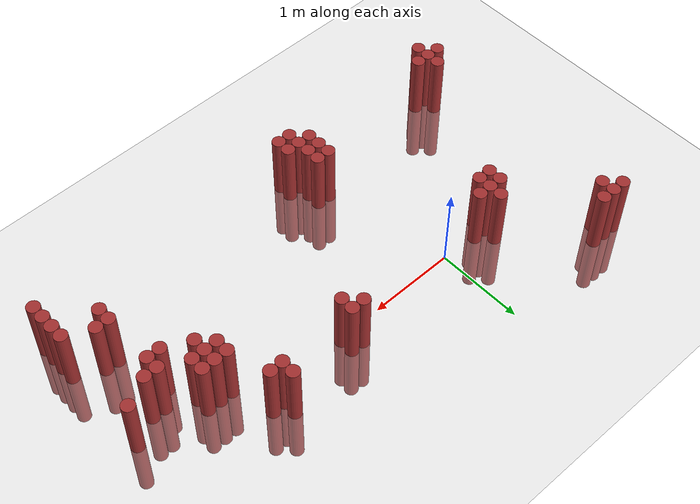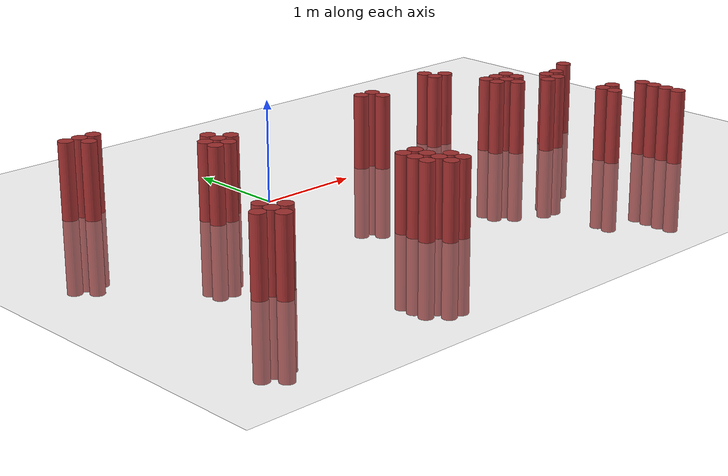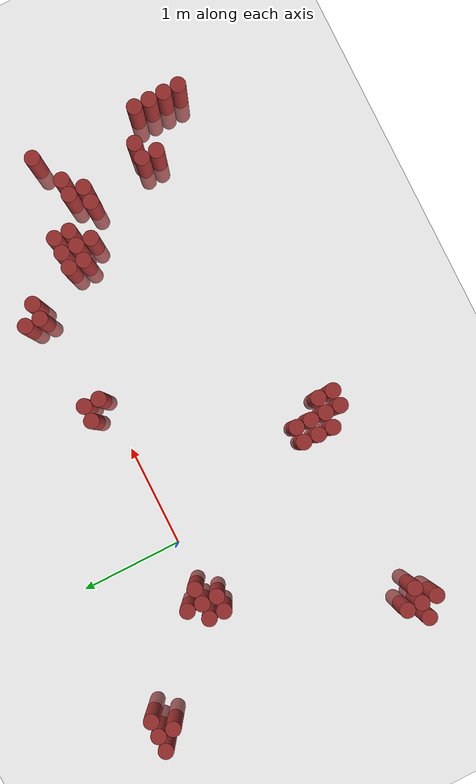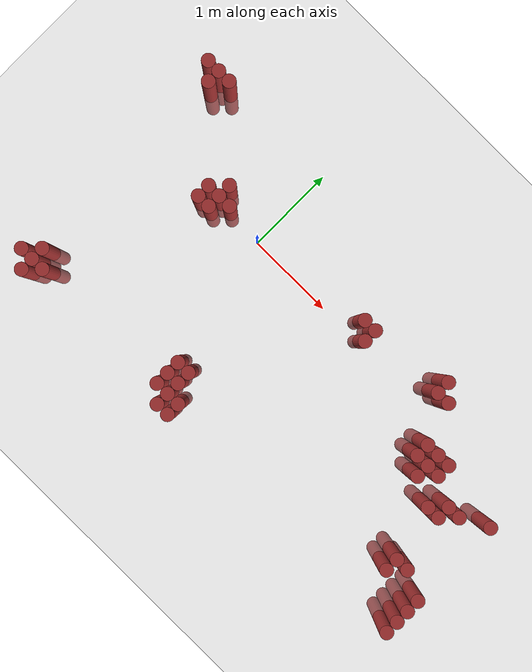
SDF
<sdf version="1.6">
 <world name="default">
  <model name="ground_plane">
   <static>1</static>
   <link name="link">
    <collision name="collision">
     <geometry><plane><normal>0 0 1</normal><size>100 100</size></plane></geometry>
     <surface><friction><ode><mu>100</mu><mu2>50</mu2></ode></friction></surface>
    </collision>
    <visual name="visual">
     <cast_shadows>0</cast_shadows>
     <geometry><plane><normal>0 0 1</normal><size>100 100</size></plane></geometry>
     <material>
      <script><uri>file://media/materials/scripts/gazebo.material</uri><name>Gazebo/Grey</name></script>
     </material>
    </visual>
   </link>
  </model>
  <model name="unit_cylinder_330">
   <static>1</static>
   <pose>-1.625000 -1.775000 0.000000 0.000000 0.000000 0.000000</pose>
   <link name="link">
    <inertial>
     <mass>1</mass>
     <inertia><ixx>0.145833</ixx><ixy>0</ixy><ixz>0</ixz><iyy>0.145833</iyy><iyz>0</iyz><izz>0.125</izz></inertia>
    </inertial>
    <collision name="collision">
     <geometry><cylinder><radius>0.075000</radius><length>1.5</length></cylinder></geometry>
    </collision>
    <visual name="visual">
     <geometry><cylinder><radius>0.075000</radius><length>1.5</length></cylinder></geometry>
     <material>
      <ambient>0.648000 0.192000 0.192000 1</ambient>
      <diffuse>0.648000 0.192000 0.192000 1</diffuse>
     </material>
     <material>
      <script><name>Gazebo/Grey</name><uri>file://media/materials/scripts/gazebo.material</uri></script>
     </material>
    </visual>
   </link>
  </model>
  <model name="unit_cylinder_331">
   <static>1</static>
   <pose>-1.625000 0.925000 0.000000 0.000000 0.000000 0.000000</pose>
   <link name="link">
    <inertial>
     <mass>1</mass>
     <inertia><ixx>0.145833</ixx><ixy>0</ixy><ixz>0</ixz><iyy>0.145833</iyy><iyz>0</iyz><izz>0.125</izz></inertia>
    </inertial>
    <collision name="collision">
     <geometry><cylinder><radius>0.075000</radius><length>1.5</length></cylinder></geometry>
    </collision>
    <visual name="visual">
     <geometry><cylinder><radius>0.075000</radius><length>1.5</length></cylinder></geometry>
     <material>
      <ambient>0.648000 0.192000 0.192000 1</ambient>
      <diffuse>0.648000 0.192000 0.192000 1</diffuse>
     </material>
     <material>
      <script><name>Gazebo/Grey</name><uri>file://media/materials/scripts/gazebo.material</uri></script>
     </material>
    </visual>
   </link>
  </model>
  <model name="unit_cylinder_336">
   <static>1</static>
   <pose>-1.475000 -1.925000 0.000000 0.000000 0.000000 0.000000</pose>
   <link name="link">
    <inertial>
     <mass>1</mass>
     <inertia><ixx>0.145833</ixx><ixy>0</ixy><ixz>0</ixz><iyy>0.145833</iyy><iyz>0</iyz><izz>0.125</izz></inertia>
    </inertial>
    <collision name="collision">
     <geometry><cylinder><radius>0.075000</radius><length>1.5</length></cylinder></geometry>
    </collision>
    <visual name="visual">
     <geometry><cylinder><radius>0.075000</radius><length>1.5</length></cylinder></geometry>
     <material>
      <ambient>0.648000 0.192000 0.192000 1</ambient>
      <diffuse>0.648000 0.192000 0.192000 1</diffuse>
     </material>
     <material>
      <script><name>Gazebo/Grey</name><uri>file://media/materials/scripts/gazebo.material</uri></script>
     </material>
    </visual>
   </link>
  </model>
  <model name="unit_cylinder_337">
   <static>1</static>
   <pose>-1.475000 -1.775000 0.000000 0.000000 0.000000 0.000000</pose>
   <link name="link">
    <inertial>
     <mass>1</mass>
     <inertia><ixx>0.145833</ixx><ixy>0</ixy><ixz>0</ixz><iyy>0.145833</iyy><iyz>0</iyz><izz>0.125</izz></inertia>
    </inertial>
    <collision name="collision">
     <geometry><cylinder><radius>0.075000</radius><length>1.5</length></cylinder></geometry>
    </collision>
    <visual name="visual">
     <geometry><cylinder><radius>0.075000</radius><length>1.5</length></cylinder></geometry>
     <material>
      <ambient>0.648000 0.192000 0.192000 1</ambient>
      <diffuse>0.648000 0.192000 0.192000 1</diffuse>
     </material>
     <material>
      <script><name>Gazebo/Grey</name><uri>file://media/materials/scripts/gazebo.material</uri></script>
     </material>
    </visual>
   </link>
  </model>
  <model name="unit_cylinder_338">
   <static>1</static>
   <pose>-1.475000 -1.625000 0.000000 0.000000 0.000000 0.000000</pose>
   <link name="link">
    <inertial>
     <mass>1</mass>
     <inertia><ixx>0.145833</ixx><ixy>0</ixy><ixz>0</ixz><iyy>0.145833</iyy><iyz>0</iyz><izz>0.125</izz></inertia>
    </inertial>
    <collision name="collision">
     <geometry><cylinder><radius>0.075000</radius><length>1.5</length></cylinder></geometry>
    </collision>
    <visual name="visual">
     <geometry><cylinder><radius>0.075000</radius><length>1.5</length></cylinder></geometry>
     <material>
      <ambient>0.648000 0.192000 0.192000 1</ambient>
      <diffuse>0.648000 0.192000 0.192000 1</diffuse>
     </material>
     <material>
      <script><name>Gazebo/Grey</name><uri>file://media/materials/scripts/gazebo.material</uri></script>
     </material>
    </visual>
   </link>
  </model>
  <model name="unit_cylinder_339">
   <static>1</static>
   <pose>-1.475000 0.775000 0.000000 0.000000 0.000000 0.000000</pose>
   <link name="link">
    <inertial>
     <mass>1</mass>
     <inertia><ixx>0.145833</ixx><ixy>0</ixy><ixz>0</ixz><iyy>0.145833</iyy><iyz>0</iyz><izz>0.125</izz></inertia>
    </inertial>
    <collision name="collision">
     <geometry><cylinder><radius>0.075000</radius><length>1.5</length></cylinder></geometry>
    </collision>
    <visual name="visual">
     <geometry><cylinder><radius>0.075000</radius><length>1.5</length></cylinder></geometry>
     <material>
      <ambient>0.648000 0.192000 0.192000 1</ambient>
      <diffuse>0.648000 0.192000 0.192000 1</diffuse>
     </material>
     <material>
      <script><name>Gazebo/Grey</name><uri>file://media/materials/scripts/gazebo.material</uri></script>
     </material>
    </visual>
   </link>
  </model>
  <model name="unit_cylinder_340">
   <static>1</static>
   <pose>-1.475000 0.925000 0.000000 0.000000 0.000000 0.000000</pose>
   <link name="link">
    <inertial>
     <mass>1</mass>
     <inertia><ixx>0.145833</ixx><ixy>0</ixy><ixz>0</ixz><iyy>0.145833</iyy><iyz>0</iyz><izz>0.125</izz></inertia>
    </inertial>
    <collision name="collision">
     <geometry><cylinder><radius>0.075000</radius><length>1.5</length></cylinder></geometry>
    </collision>
    <visual name="visual">
     <geometry><cylinder><radius>0.075000</radius><length>1.5</length></cylinder></geometry>
     <material>
      <ambient>0.648000 0.192000 0.192000 1</ambient>
      <diffuse>0.648000 0.192000 0.192000 1</diffuse>
     </material>
     <material>
      <script><name>Gazebo/Grey</name><uri>file://media/materials/scripts/gazebo.material</uri></script>
     </material>
    </visual>
   </link>
  </model>
  <model name="unit_cylinder_346">
   <static>1</static>
   <pose>-1.325000 -1.775000 0.000000 0.000000 0.000000 0.000000</pose>
   <link name="link">
    <inertial>
     <mass>1</mass>
     <inertia><ixx>0.145833</ixx><ixy>0</ixy><ixz>0</ixz><iyy>0.145833</iyy><iyz>0</iyz><izz>0.125</izz></inertia>
    </inertial>
    <collision name="collision">
     <geometry><cylinder><radius>0.075000</radius><length>1.5</length></cylinder></geometry>
    </collision>
    <visual name="visual">
     <geometry><cylinder><radius>0.075000</radius><length>1.5</length></cylinder></geometry>
     <material>
      <ambient>0.648000 0.192000 0.192000 1</ambient>
      <diffuse>0.648000 0.192000 0.192000 1</diffuse>
     </material>
     <material>
      <script><name>Gazebo/Grey</name><uri>file://media/materials/scripts/gazebo.material</uri></script>
     </material>
    </visual>
   </link>
  </model>
  <model name="unit_cylinder_347">
   <static>1</static>
   <pose>-1.325000 0.925000 0.000000 0.000000 0.000000 0.000000</pose>
   <link name="link">
    <inertial>
     <mass>1</mass>
     <inertia><ixx>0.145833</ixx><ixy>0</ixy><ixz>0</ixz><iyy>0.145833</iyy><iyz>0</iyz><izz>0.125</izz></inertia>
    </inertial>
    <collision name="collision">
     <geometry><cylinder><radius>0.075000</radius><length>1.5</length></cylinder></geometry>
    </collision>
    <visual name="visual">
     <geometry><cylinder><radius>0.075000</radius><length>1.5</length></cylinder></geometry>
     <material>
      <ambient>0.648000 0.192000 0.192000 1</ambient>
      <diffuse>0.648000 0.192000 0.192000 1</diffuse>
     </material>
     <material>
      <script><name>Gazebo/Grey</name><uri>file://media/materials/scripts/gazebo.material</uri></script>
     </material>
    </visual>
   </link>
  </model>
  <model name="unit_cylinder_371">
   <static>1</static>
   <pose>-0.725000 -0.125000 0.000000 0.000000 0.000000 0.000000</pose>
   <link name="link">
    <inertial>
     <mass>1</mass>
     <inertia><ixx>0.145833</ixx><ixy>0</ixy><ixz>0</ixz><iyy>0.145833</iyy><iyz>0</iyz><izz>0.125</izz></inertia>
    </inertial>
    <collision name="collision">
     <geometry><cylinder><radius>0.075000</radius><length>1.5</length></cylinder></geometry>
    </collision>
    <visual name="visual">
     <geometry><cylinder><radius>0.075000</radius><length>1.5</length></cylinder></geometry>
     <material>
      <ambient>0.648000 0.192000 0.192000 1</ambient>
      <diffuse>0.648000 0.192000 0.192000 1</diffuse>
     </material>
     <material>
      <script><name>Gazebo/Grey</name><uri>file://media/materials/scripts/gazebo.material</uri></script>
     </material>
    </visual>
   </link>
  </model>
  <model name="unit_cylinder_372">
   <static>1</static>
   <pose>-0.725000 0.025000 0.000000 0.000000 0.000000 0.000000</pose>
   <link name="link">
    <inertial>
     <mass>1</mass>
     <inertia><ixx>0.145833</ixx><ixy>0</ixy><ixz>0</ixz><iyy>0.145833</iyy><iyz>0</iyz><izz>0.125</izz></inertia>
    </inertial>
    <collision name="collision">
     <geometry><cylinder><radius>0.075000</radius><length>1.5</length></cylinder></geometry>
    </collision>
    <visual name="visual">
     <geometry><cylinder><radius>0.075000</radius><length>1.5</length></cylinder></geometry>
     <material>
      <ambient>0.648000 0.192000 0.192000 1</ambient>
      <diffuse>0.648000 0.192000 0.192000 1</diffuse>
     </material>
     <material>
      <script><name>Gazebo/Grey</name><uri>file://media/materials/scripts/gazebo.material</uri></script>
     </material>
    </visual>
   </link>
  </model>
  <model name="unit_cylinder_374">
   <static>1</static>
   <pose>-0.575000 -0.125000 0.000000 0.000000 0.000000 0.000000</pose>
   <link name="link">
    <inertial>
     <mass>1</mass>
     <inertia><ixx>0.145833</ixx><ixy>0</ixy><ixz>0</ixz><iyy>0.145833</iyy><iyz>0</iyz><izz>0.125</izz></inertia>
    </inertial>
    <collision name="collision">
     <geometry><cylinder><radius>0.075000</radius><length>1.5</length></cylinder></geometry>
    </collision>
    <visual name="visual">
     <geometry><cylinder><radius>0.075000</radius><length>1.5</length></cylinder></geometry>
     <material>
      <ambient>0.648000 0.192000 0.192000 1</ambient>
      <diffuse>0.648000 0.192000 0.192000 1</diffuse>
     </material>
     <material>
      <script><name>Gazebo/Grey</name><uri>file://media/materials/scripts/gazebo.material</uri></script>
     </material>
    </visual>
   </link>
  </model>
  <model name="unit_cylinder_375">
   <static>1</static>
   <pose>-0.575000 0.025000 0.000000 0.000000 0.000000 0.000000</pose>
   <link name="link">
    <inertial>
     <mass>1</mass>
     <inertia><ixx>0.145833</ixx><ixy>0</ixy><ixz>0</ixz><iyy>0.145833</iyy><iyz>0</iyz><izz>0.125</izz></inertia>
    </inertial>
    <collision name="collision">
     <geometry><cylinder><radius>0.075000</radius><length>1.5</length></cylinder></geometry>
    </collision>
    <visual name="visual">
     <geometry><cylinder><radius>0.075000</radius><length>1.5</length></cylinder></geometry>
     <material>
      <ambient>0.648000 0.192000 0.192000 1</ambient>
      <diffuse>0.648000 0.192000 0.192000 1</diffuse>
     </material>
     <material>
      <script><name>Gazebo/Grey</name><uri>file://media/materials/scripts/gazebo.material</uri></script>
     </material>
    </visual>
   </link>
  </model>
  <model name="unit_cylinder_376">
   <static>1</static>
   <pose>-0.575000 0.175000 0.000000 0.000000 0.000000 0.000000</pose>
   <link name="link">
    <inertial>
     <mass>1</mass>
     <inertia><ixx>0.145833</ixx><ixy>0</ixy><ixz>0</ixz><iyy>0.145833</iyy><iyz>0</iyz><izz>0.125</izz></inertia>
    </inertial>
    <collision name="collision">
     <geometry><cylinder><radius>0.075000</radius><length>1.5</length></cylinder></geometry>
    </collision>
    <visual name="visual">
     <geometry><cylinder><radius>0.075000</radius><length>1.5</length></cylinder></geometry>
     <material>
      <ambient>0.648000 0.192000 0.192000 1</ambient>
      <diffuse>0.648000 0.192000 0.192000 1</diffuse>
     </material>
     <material>
      <script><name>Gazebo/Grey</name><uri>file://media/materials/scripts/gazebo.material</uri></script>
     </material>
    </visual>
   </link>
  </model>
  <model name="unit_cylinder_377">
   <static>1</static>
   <pose>-0.425000 0.025000 0.000000 0.000000 0.000000 0.000000</pose>
   <link name="link">
    <inertial>
     <mass>1</mass>
     <inertia><ixx>0.145833</ixx><ixy>0</ixy><ixz>0</ixz><iyy>0.145833</iyy><iyz>0</iyz><izz>0.125</izz></inertia>
    </inertial>
    <collision name="collision">
     <geometry><cylinder><radius>0.075000</radius><length>1.5</length></cylinder></geometry>
    </collision>
    <visual name="visual">
     <geometry><cylinder><radius>0.075000</radius><length>1.5</length></cylinder></geometry>
     <material>
      <ambient>0.648000 0.192000 0.192000 1</ambient>
      <diffuse>0.648000 0.192000 0.192000 1</diffuse>
     </material>
     <material>
      <script><name>Gazebo/Grey</name><uri>file://media/materials/scripts/gazebo.material</uri></script>
     </material>
    </visual>
   </link>
  </model>
  <model name="unit_cylinder_389">
   <static>1</static>
   <pose>0.325000 -1.775000 0.000000 0.000000 0.000000 0.000000</pose>
   <link name="link">
    <inertial>
     <mass>1</mass>
     <inertia><ixx>0.145833</ixx><ixy>0</ixy><ixz>0</ixz><iyy>0.145833</iyy><iyz>0</iyz><izz>0.125</izz></inertia>
    </inertial>
    <collision name="collision">
     <geometry><cylinder><radius>0.075000</radius><length>1.5</length></cylinder></geometry>
    </collision>
    <visual name="visual">
     <geometry><cylinder><radius>0.075000</radius><length>1.5</length></cylinder></geometry>
     <material>
      <ambient>0.648000 0.192000 0.192000 1</ambient>
      <diffuse>0.648000 0.192000 0.192000 1</diffuse>
     </material>
     <material>
      <script><name>Gazebo/Grey</name><uri>file://media/materials/scripts/gazebo.material</uri></script>
     </material>
    </visual>
   </link>
  </model>
  <model name="unit_cylinder_390">
   <static>1</static>
   <pose>0.325000 -1.625000 0.000000 0.000000 0.000000 0.000000</pose>
   <link name="link">
    <inertial>
     <mass>1</mass>
     <inertia><ixx>0.145833</ixx><ixy>0</ixy><ixz>0</ixz><iyy>0.145833</iyy><iyz>0</iyz><izz>0.125</izz></inertia>
    </inertial>
    <collision name="collision">
     <geometry><cylinder><radius>0.075000</radius><length>1.5</length></cylinder></geometry>
    </collision>
    <visual name="visual">
     <geometry><cylinder><radius>0.075000</radius><length>1.5</length></cylinder></geometry>
     <material>
      <ambient>0.648000 0.192000 0.192000 1</ambient>
      <diffuse>0.648000 0.192000 0.192000 1</diffuse>
     </material>
     <material>
      <script><name>Gazebo/Grey</name><uri>file://media/materials/scripts/gazebo.material</uri></script>
     </material>
    </visual>
   </link>
  </model>
  <model name="unit_cylinder_391">
   <static>1</static>
   <pose>0.325000 -1.475000 0.000000 0.000000 0.000000 0.000000</pose>
   <link name="link">
    <inertial>
     <mass>1</mass>
     <inertia><ixx>0.145833</ixx><ixy>0</ixy><ixz>0</ixz><iyy>0.145833</iyy><iyz>0</iyz><izz>0.125</izz></inertia>
    </inertial>
    <collision name="collision">
     <geometry><cylinder><radius>0.075000</radius><length>1.5</length></cylinder></geometry>
    </collision>
    <visual name="visual">
     <geometry><cylinder><radius>0.075000</radius><length>1.5</length></cylinder></geometry>
     <material>
      <ambient>0.648000 0.192000 0.192000 1</ambient>
      <diffuse>0.648000 0.192000 0.192000 1</diffuse>
     </material>
     <material>
      <script><name>Gazebo/Grey</name><uri>file://media/materials/scripts/gazebo.material</uri></script>
     </material>
    </visual>
   </link>
  </model>
  <model name="unit_cylinder_392">
   <static>1</static>
   <pose>0.475000 -1.925000 0.000000 0.000000 0.000000 0.000000</pose>
   <link name="link">
    <inertial>
     <mass>1</mass>
     <inertia><ixx>0.145833</ixx><ixy>0</ixy><ixz>0</ixz><iyy>0.145833</iyy><iyz>0</iyz><izz>0.125</izz></inertia>
    </inertial>
    <collision name="collision">
     <geometry><cylinder><radius>0.075000</radius><length>1.5</length></cylinder></geometry>
    </collision>
    <visual name="visual">
     <geometry><cylinder><radius>0.075000</radius><length>1.5</length></cylinder></geometry>
     <material>
      <ambient>0.648000 0.192000 0.192000 1</ambient>
      <diffuse>0.648000 0.192000 0.192000 1</diffuse>
     </material>
     <material>
      <script><name>Gazebo/Grey</name><uri>file://media/materials/scripts/gazebo.material</uri></script>
     </material>
    </visual>
   </link>
  </model>
  <model name="unit_cylinder_393">
   <static>1</static>
   <pose>0.475000 -1.775000 0.000000 0.000000 0.000000 0.000000</pose>
   <link name="link">
    <inertial>
     <mass>1</mass>
     <inertia><ixx>0.145833</ixx><ixy>0</ixy><ixz>0</ixz><iyy>0.145833</iyy><iyz>0</iyz><izz>0.125</izz></inertia>
    </inertial>
    <collision name="collision">
     <geometry><cylinder><radius>0.075000</radius><length>1.5</length></cylinder></geometry>
    </collision>
    <visual name="visual">
     <geometry><cylinder><radius>0.075000</radius><length>1.5</length></cylinder></geometry>
     <material>
      <ambient>0.648000 0.192000 0.192000 1</ambient>
      <diffuse>0.648000 0.192000 0.192000 1</diffuse>
     </material>
     <material>
      <script><name>Gazebo/Grey</name><uri>file://media/materials/scripts/gazebo.material</uri></script>
     </material>
    </visual>
   </link>
  </model>
  <model name="unit_cylinder_394">
   <static>1</static>
   <pose>0.475000 -1.625000 0.000000 0.000000 0.000000 0.000000</pose>
   <link name="link">
    <inertial>
     <mass>1</mass>
     <inertia><ixx>0.145833</ixx><ixy>0</ixy><ixz>0</ixz><iyy>0.145833</iyy><iyz>0</iyz><izz>0.125</izz></inertia>
    </inertial>
    <collision name="collision">
     <geometry><cylinder><radius>0.075000</radius><length>1.5</length></cylinder></geometry>
    </collision>
    <visual name="visual">
     <geometry><cylinder><radius>0.075000</radius><length>1.5</length></cylinder></geometry>
     <material>
      <ambient>0.648000 0.192000 0.192000 1</ambient>
      <diffuse>0.648000 0.192000 0.192000 1</diffuse>
     </material>
     <material>
      <script><name>Gazebo/Grey</name><uri>file://media/materials/scripts/gazebo.material</uri></script>
     </material>
    </visual>
   </link>
  </model>
  <model name="unit_cylinder_395">
   <static>1</static>
   <pose>0.475000 -1.475000 0.000000 0.000000 0.000000 0.000000</pose>
   <link name="link">
    <inertial>
     <mass>1</mass>
     <inertia><ixx>0.145833</ixx><ixy>0</ixy><ixz>0</ixz><iyy>0.145833</iyy><iyz>0</iyz><izz>0.125</izz></inertia>
    </inertial>
    <collision name="collision">
     <geometry><cylinder><radius>0.075000</radius><length>1.5</length></cylinder></geometry>
    </collision>
    <visual name="visual">
     <geometry><cylinder><radius>0.075000</radius><length>1.5</length></cylinder></geometry>
     <material>
      <ambient>0.648000 0.192000 0.192000 1</ambient>
      <diffuse>0.648000 0.192000 0.192000 1</diffuse>
     </material>
     <material>
      <script><name>Gazebo/Grey</name><uri>file://media/materials/scripts/gazebo.material</uri></script>
     </material>
    </visual>
   </link>
  </model>
  <model name="unit_cylinder_396">
   <static>1</static>
   <pose>0.625000 -1.925000 0.000000 0.000000 0.000000 0.000000</pose>
   <link name="link">
    <inertial>
     <mass>1</mass>
     <inertia><ixx>0.145833</ixx><ixy>0</ixy><ixz>0</ixz><iyy>0.145833</iyy><iyz>0</iyz><izz>0.125</izz></inertia>
    </inertial>
    <collision name="collision">
     <geometry><cylinder><radius>0.075000</radius><length>1.5</length></cylinder></geometry>
    </collision>
    <visual name="visual">
     <geometry><cylinder><radius>0.075000</radius><length>1.5</length></cylinder></geometry>
     <material>
      <ambient>0.648000 0.192000 0.192000 1</ambient>
      <diffuse>0.648000 0.192000 0.192000 1</diffuse>
     </material>
     <material>
      <script><name>Gazebo/Grey</name><uri>file://media/materials/scripts/gazebo.material</uri></script>
     </material>
    </visual>
   </link>
  </model>
  <model name="unit_cylinder_397">
   <static>1</static>
   <pose>0.625000 -1.775000 0.000000 0.000000 0.000000 0.000000</pose>
   <link name="link">
    <inertial>
     <mass>1</mass>
     <inertia><ixx>0.145833</ixx><ixy>0</ixy><ixz>0</ixz><iyy>0.145833</iyy><iyz>0</iyz><izz>0.125</izz></inertia>
    </inertial>
    <collision name="collision">
     <geometry><cylinder><radius>0.075000</radius><length>1.5</length></cylinder></geometry>
    </collision>
    <visual name="visual">
     <geometry><cylinder><radius>0.075000</radius><length>1.5</length></cylinder></geometry>
     <material>
      <ambient>0.648000 0.192000 0.192000 1</ambient>
      <diffuse>0.648000 0.192000 0.192000 1</diffuse>
     </material>
     <material>
      <script><name>Gazebo/Grey</name><uri>file://media/materials/scripts/gazebo.material</uri></script>
     </material>
    </visual>
   </link>
  </model>
  <model name="unit_cylinder_400">
   <static>1</static>
   <pose>1.375000 0.175000 0.000000 0.000000 0.000000 0.000000</pose>
   <link name="link">
    <inertial>
     <mass>1</mass>
     <inertia><ixx>0.145833</ixx><ixy>0</ixy><ixz>0</ixz><iyy>0.145833</iyy><iyz>0</iyz><izz>0.125</izz></inertia>
    </inertial>
    <collision name="collision">
     <geometry><cylinder><radius>0.075000</radius><length>1.5</length></cylinder></geometry>
    </collision>
    <visual name="visual">
     <geometry><cylinder><radius>0.075000</radius><length>1.5</length></cylinder></geometry>
     <material>
      <ambient>0.648000 0.192000 0.192000 1</ambient>
      <diffuse>0.648000 0.192000 0.192000 1</diffuse>
     </material>
     <material>
      <script><name>Gazebo/Grey</name><uri>file://media/materials/scripts/gazebo.material</uri></script>
     </material>
    </visual>
   </link>
  </model>
  <model name="unit_cylinder_405">
   <static>1</static>
   <pose>1.525000 0.025000 0.000000 0.000000 0.000000 0.000000</pose>
   <link name="link">
    <inertial>
     <mass>1</mass>
     <inertia><ixx>0.145833</ixx><ixy>0</ixy><ixz>0</ixz><iyy>0.145833</iyy><iyz>0</iyz><izz>0.125</izz></inertia>
    </inertial>
    <collision name="collision">
     <geometry><cylinder><radius>0.075000</radius><length>1.5</length></cylinder></geometry>
    </collision>
    <visual name="visual">
     <geometry><cylinder><radius>0.075000</radius><length>1.5</length></cylinder></geometry>
     <material>
      <ambient>0.648000 0.192000 0.192000 1</ambient>
      <diffuse>0.648000 0.192000 0.192000 1</diffuse>
     </material>
     <material>
      <script><name>Gazebo/Grey</name><uri>file://media/materials/scripts/gazebo.material</uri></script>
     </material>
    </visual>
   </link>
  </model>
  <model name="unit_cylinder_406">
   <static>1</static>
   <pose>1.525000 0.175000 0.000000 0.000000 0.000000 0.000000</pose>
   <link name="link">
    <inertial>
     <mass>1</mass>
     <inertia><ixx>0.145833</ixx><ixy>0</ixy><ixz>0</ixz><iyy>0.145833</iyy><iyz>0</iyz><izz>0.125</izz></inertia>
    </inertial>
    <collision name="collision">
     <geometry><cylinder><radius>0.075000</radius><length>1.5</length></cylinder></geometry>
    </collision>
    <visual name="visual">
     <geometry><cylinder><radius>0.075000</radius><length>1.5</length></cylinder></geometry>
     <material>
      <ambient>0.648000 0.192000 0.192000 1</ambient>
      <diffuse>0.648000 0.192000 0.192000 1</diffuse>
     </material>
     <material>
      <script><name>Gazebo/Grey</name><uri>file://media/materials/scripts/gazebo.material</uri></script>
     </material>
    </visual>
   </link>
  </model>
  <model name="unit_cylinder_424">
   <static>1</static>
   <pose>2.425000 0.175000 0.000000 0.000000 0.000000 0.000000</pose>
   <link name="link">
    <inertial>
     <mass>1</mass>
     <inertia><ixx>0.145833</ixx><ixy>0</ixy><ixz>0</ixz><iyy>0.145833</iyy><iyz>0</iyz><izz>0.125</izz></inertia>
    </inertial>
    <collision name="collision">
     <geometry><cylinder><radius>0.075000</radius><length>1.5</length></cylinder></geometry>
    </collision>
    <visual name="visual">
     <geometry><cylinder><radius>0.075000</radius><length>1.5</length></cylinder></geometry>
     <material>
      <ambient>0.648000 0.192000 0.192000 1</ambient>
      <diffuse>0.648000 0.192000 0.192000 1</diffuse>
     </material>
     <material>
      <script><name>Gazebo/Grey</name><uri>file://media/materials/scripts/gazebo.material</uri></script>
     </material>
    </visual>
   </link>
  </model>
  <model name="unit_cylinder_425">
   <static>1</static>
   <pose>2.425000 0.325000 0.000000 0.000000 0.000000 0.000000</pose>
   <link name="link">
    <inertial>
     <mass>1</mass>
     <inertia><ixx>0.145833</ixx><ixy>0</ixy><ixz>0</ixz><iyy>0.145833</iyy><iyz>0</iyz><izz>0.125</izz></inertia>
    </inertial>
    <collision name="collision">
     <geometry><cylinder><radius>0.075000</radius><length>1.5</length></cylinder></geometry>
    </collision>
    <visual name="visual">
     <geometry><cylinder><radius>0.075000</radius><length>1.5</length></cylinder></geometry>
     <material>
      <ambient>0.648000 0.192000 0.192000 1</ambient>
      <diffuse>0.648000 0.192000 0.192000 1</diffuse>
     </material>
     <material>
      <script><name>Gazebo/Grey</name><uri>file://media/materials/scripts/gazebo.material</uri></script>
     </material>
    </visual>
   </link>
  </model>
  <model name="unit_cylinder_428">
   <static>1</static>
   <pose>2.575000 0.175000 0.000000 0.000000 0.000000 0.000000</pose>
   <link name="link">
    <inertial>
     <mass>1</mass>
     <inertia><ixx>0.145833</ixx><ixy>0</ixy><ixz>0</ixz><iyy>0.145833</iyy><iyz>0</iyz><izz>0.125</izz></inertia>
    </inertial>
    <collision name="collision">
     <geometry><cylinder><radius>0.075000</radius><length>1.5</length></cylinder></geometry>
    </collision>
    <visual name="visual">
     <geometry><cylinder><radius>0.075000</radius><length>1.5</length></cylinder></geometry>
     <material>
      <ambient>0.648000 0.192000 0.192000 1</ambient>
      <diffuse>0.648000 0.192000 0.192000 1</diffuse>
     </material>
     <material>
      <script><name>Gazebo/Grey</name><uri>file://media/materials/scripts/gazebo.material</uri></script>
     </material>
    </visual>
   </link>
  </model>
  <model name="unit_cylinder_430">
   <static>1</static>
   <pose>2.725000 -0.425000 0.000000 0.000000 0.000000 0.000000</pose>
   <link name="link">
    <inertial>
     <mass>1</mass>
     <inertia><ixx>0.145833</ixx><ixy>0</ixy><ixz>0</ixz><iyy>0.145833</iyy><iyz>0</iyz><izz>0.125</izz></inertia>
    </inertial>
    <collision name="collision">
     <geometry><cylinder><radius>0.075000</radius><length>1.5</length></cylinder></geometry>
    </collision>
    <visual name="visual">
     <geometry><cylinder><radius>0.075000</radius><length>1.5</length></cylinder></geometry>
     <material>
      <ambient>0.648000 0.192000 0.192000 1</ambient>
      <diffuse>0.648000 0.192000 0.192000 1</diffuse>
     </material>
     <material>
      <script><name>Gazebo/Grey</name><uri>file://media/materials/scripts/gazebo.material</uri></script>
     </material>
    </visual>
   </link>
  </model>
  <model name="unit_cylinder_431">
   <static>1</static>
   <pose>2.725000 -0.275000 0.000000 0.000000 0.000000 0.000000</pose>
   <link name="link">
    <inertial>
     <mass>1</mass>
     <inertia><ixx>0.145833</ixx><ixy>0</ixy><ixz>0</ixz><iyy>0.145833</iyy><iyz>0</iyz><izz>0.125</izz></inertia>
    </inertial>
    <collision name="collision">
     <geometry><cylinder><radius>0.075000</radius><length>1.5</length></cylinder></geometry>
    </collision>
    <visual name="visual">
     <geometry><cylinder><radius>0.075000</radius><length>1.5</length></cylinder></geometry>
     <material>
      <ambient>0.648000 0.192000 0.192000 1</ambient>
      <diffuse>0.648000 0.192000 0.192000 1</diffuse>
     </material>
     <material>
      <script><name>Gazebo/Grey</name><uri>file://media/materials/scripts/gazebo.material</uri></script>
     </material>
    </visual>
   </link>
  </model>
  <model name="unit_cylinder_432">
   <static>1</static>
   <pose>2.875000 -0.575000 0.000000 0.000000 0.000000 0.000000</pose>
   <link name="link">
    <inertial>
     <mass>1</mass>
     <inertia><ixx>0.145833</ixx><ixy>0</ixy><ixz>0</ixz><iyy>0.145833</iyy><iyz>0</iyz><izz>0.125</izz></inertia>
    </inertial>
    <collision name="collision">
     <geometry><cylinder><radius>0.075000</radius><length>1.5</length></cylinder></geometry>
    </collision>
    <visual name="visual">
     <geometry><cylinder><radius>0.075000</radius><length>1.5</length></cylinder></geometry>
     <material>
      <ambient>0.648000 0.192000 0.192000 1</ambient>
      <diffuse>0.648000 0.192000 0.192000 1</diffuse>
     </material>
     <material>
      <script><name>Gazebo/Grey</name><uri>file://media/materials/scripts/gazebo.material</uri></script>
     </material>
    </visual>
   </link>
  </model>
  <model name="unit_cylinder_433">
   <static>1</static>
   <pose>2.875000 -0.425000 0.000000 0.000000 0.000000 0.000000</pose>
   <link name="link">
    <inertial>
     <mass>1</mass>
     <inertia><ixx>0.145833</ixx><ixy>0</ixy><ixz>0</ixz><iyy>0.145833</iyy><iyz>0</iyz><izz>0.125</izz></inertia>
    </inertial>
    <collision name="collision">
     <geometry><cylinder><radius>0.075000</radius><length>1.5</length></cylinder></geometry>
    </collision>
    <visual name="visual">
     <geometry><cylinder><radius>0.075000</radius><length>1.5</length></cylinder></geometry>
     <material>
      <ambient>0.648000 0.192000 0.192000 1</ambient>
      <diffuse>0.648000 0.192000 0.192000 1</diffuse>
     </material>
     <material>
      <script><name>Gazebo/Grey</name><uri>file://media/materials/scripts/gazebo.material</uri></script>
     </material>
    </visual>
   </link>
  </model>
  <model name="unit_cylinder_434">
   <static>1</static>
   <pose>2.875000 -0.275000 0.000000 0.000000 0.000000 0.000000</pose>
   <link name="link">
    <inertial>
     <mass>1</mass>
     <inertia><ixx>0.145833</ixx><ixy>0</ixy><ixz>0</ixz><iyy>0.145833</iyy><iyz>0</iyz><izz>0.125</izz></inertia>
    </inertial>
    <collision name="collision">
     <geometry><cylinder><radius>0.075000</radius><length>1.5</length></cylinder></geometry>
    </collision>
    <visual name="visual">
     <geometry><cylinder><radius>0.075000</radius><length>1.5</length></cylinder></geometry>
     <material>
      <ambient>0.648000 0.192000 0.192000 1</ambient>
      <diffuse>0.648000 0.192000 0.192000 1</diffuse>
     </material>
     <material>
      <script><name>Gazebo/Grey</name><uri>file://media/materials/scripts/gazebo.material</uri></script>
     </material>
    </visual>
   </link>
  </model>
  <model name="unit_cylinder_441">
   <static>1</static>
   <pose>3.025000 -0.425000 0.000000 0.000000 0.000000 0.000000</pose>
   <link name="link">
    <inertial>
     <mass>1</mass>
     <inertia><ixx>0.145833</ixx><ixy>0</ixy><ixz>0</ixz><iyy>0.145833</iyy><iyz>0</iyz><izz>0.125</izz></inertia>
    </inertial>
    <collision name="collision">
     <geometry><cylinder><radius>0.075000</radius><length>1.5</length></cylinder></geometry>
    </collision>
    <visual name="visual">
     <geometry><cylinder><radius>0.075000</radius><length>1.5</length></cylinder></geometry>
     <material>
      <ambient>0.648000 0.192000 0.192000 1</ambient>
      <diffuse>0.648000 0.192000 0.192000 1</diffuse>
     </material>
     <material>
      <script><name>Gazebo/Grey</name><uri>file://media/materials/scripts/gazebo.material</uri></script>
     </material>
    </visual>
   </link>
  </model>
  <model name="unit_cylinder_442">
   <static>1</static>
   <pose>3.025000 -0.275000 0.000000 0.000000 0.000000 0.000000</pose>
   <link name="link">
    <inertial>
     <mass>1</mass>
     <inertia><ixx>0.145833</ixx><ixy>0</ixy><ixz>0</ixz><iyy>0.145833</iyy><iyz>0</iyz><izz>0.125</izz></inertia>
    </inertial>
    <collision name="collision">
     <geometry><cylinder><radius>0.075000</radius><length>1.5</length></cylinder></geometry>
    </collision>
    <visual name="visual">
     <geometry><cylinder><radius>0.075000</radius><length>1.5</length></cylinder></geometry>
     <material>
      <ambient>0.648000 0.192000 0.192000 1</ambient>
      <diffuse>0.648000 0.192000 0.192000 1</diffuse>
     </material>
     <material>
      <script><name>Gazebo/Grey</name><uri>file://media/materials/scripts/gazebo.material</uri></script>
     </material>
    </visual>
   </link>
  </model>
  <model name="unit_cylinder_449">
   <static>1</static>
   <pose>3.175000 -0.725000 0.000000 0.000000 0.000000 0.000000</pose>
   <link name="link">
    <inertial>
     <mass>1</mass>
     <inertia><ixx>0.145833</ixx><ixy>0</ixy><ixz>0</ixz><iyy>0.145833</iyy><iyz>0</iyz><izz>0.125</izz></inertia>
    </inertial>
    <collision name="collision">
     <geometry><cylinder><radius>0.075000</radius><length>1.5</length></cylinder></geometry>
    </collision>
    <visual name="visual">
     <geometry><cylinder><radius>0.075000</radius><length>1.5</length></cylinder></geometry>
     <material>
      <ambient>0.648000 0.192000 0.192000 1</ambient>
      <diffuse>0.648000 0.192000 0.192000 1</diffuse>
     </material>
     <material>
      <script><name>Gazebo/Grey</name><uri>file://media/materials/scripts/gazebo.material</uri></script>
     </material>
    </visual>
   </link>
  </model>
  <model name="unit_cylinder_451">
   <static>1</static>
   <pose>3.325000 -1.475000 0.000000 0.000000 0.000000 0.000000</pose>
   <link name="link">
    <inertial>
     <mass>1</mass>
     <inertia><ixx>0.145833</ixx><ixy>0</ixy><ixz>0</ixz><iyy>0.145833</iyy><iyz>0</iyz><izz>0.125</izz></inertia>
    </inertial>
    <collision name="collision">
     <geometry><cylinder><radius>0.075000</radius><length>1.5</length></cylinder></geometry>
    </collision>
    <visual name="visual">
     <geometry><cylinder><radius>0.075000</radius><length>1.5</length></cylinder></geometry>
     <material>
      <ambient>0.648000 0.192000 0.192000 1</ambient>
      <diffuse>0.648000 0.192000 0.192000 1</diffuse>
     </material>
     <material>
      <script><name>Gazebo/Grey</name><uri>file://media/materials/scripts/gazebo.material</uri></script>
     </material>
    </visual>
   </link>
  </model>
  <model name="unit_cylinder_452">
   <static>1</static>
   <pose>3.325000 -1.325000 0.000000 0.000000 0.000000 0.000000</pose>
   <link name="link">
    <inertial>
     <mass>1</mass>
     <inertia><ixx>0.145833</ixx><ixy>0</ixy><ixz>0</ixz><iyy>0.145833</iyy><iyz>0</iyz><izz>0.125</izz></inertia>
    </inertial>
    <collision name="collision">
     <geometry><cylinder><radius>0.075000</radius><length>1.5</length></cylinder></geometry>
    </collision>
    <visual name="visual">
     <geometry><cylinder><radius>0.075000</radius><length>1.5</length></cylinder></geometry>
     <material>
      <ambient>0.648000 0.192000 0.192000 1</ambient>
      <diffuse>0.648000 0.192000 0.192000 1</diffuse>
     </material>
     <material>
      <script><name>Gazebo/Grey</name><uri>file://media/materials/scripts/gazebo.material</uri></script>
     </material>
    </visual>
   </link>
  </model>
  <model name="unit_cylinder_453">
   <static>1</static>
   <pose>3.325000 -0.725000 0.000000 0.000000 0.000000 0.000000</pose>
   <link name="link">
    <inertial>
     <mass>1</mass>
     <inertia><ixx>0.145833</ixx><ixy>0</ixy><ixz>0</ixz><iyy>0.145833</iyy><iyz>0</iyz><izz>0.125</izz></inertia>
    </inertial>
    <collision name="collision">
     <geometry><cylinder><radius>0.075000</radius><length>1.5</length></cylinder></geometry>
    </collision>
    <visual name="visual">
     <geometry><cylinder><radius>0.075000</radius><length>1.5</length></cylinder></geometry>
     <material>
      <ambient>0.648000 0.192000 0.192000 1</ambient>
      <diffuse>0.648000 0.192000 0.192000 1</diffuse>
     </material>
     <material>
      <script><name>Gazebo/Grey</name><uri>file://media/materials/scripts/gazebo.material</uri></script>
     </material>
    </visual>
   </link>
  </model>
  <model name="unit_cylinder_454">
   <static>1</static>
   <pose>3.325000 -0.575000 0.000000 0.000000 0.000000 0.000000</pose>
   <link name="link">
    <inertial>
     <mass>1</mass>
     <inertia><ixx>0.145833</ixx><ixy>0</ixy><ixz>0</ixz><iyy>0.145833</iyy><iyz>0</iyz><izz>0.125</izz></inertia>
    </inertial>
    <collision name="collision">
     <geometry><cylinder><radius>0.075000</radius><length>1.5</length></cylinder></geometry>
    </collision>
    <visual name="visual">
     <geometry><cylinder><radius>0.075000</radius><length>1.5</length></cylinder></geometry>
     <material>
      <ambient>0.648000 0.192000 0.192000 1</ambient>
      <diffuse>0.648000 0.192000 0.192000 1</diffuse>
     </material>
     <material>
      <script><name>Gazebo/Grey</name><uri>file://media/materials/scripts/gazebo.material</uri></script>
     </material>
    </visual>
   </link>
  </model>
  <model name="unit_cylinder_455">
   <static>1</static>
   <pose>3.475000 -1.325000 0.000000 0.000000 0.000000 0.000000</pose>
   <link name="link">
    <inertial>
     <mass>1</mass>
     <inertia><ixx>0.145833</ixx><ixy>0</ixy><ixz>0</ixz><iyy>0.145833</iyy><iyz>0</iyz><izz>0.125</izz></inertia>
    </inertial>
    <collision name="collision">
     <geometry><cylinder><radius>0.075000</radius><length>1.5</length></cylinder></geometry>
    </collision>
    <visual name="visual">
     <geometry><cylinder><radius>0.075000</radius><length>1.5</length></cylinder></geometry>
     <material>
      <ambient>0.648000 0.192000 0.192000 1</ambient>
      <diffuse>0.648000 0.192000 0.192000 1</diffuse>
     </material>
     <material>
      <script><name>Gazebo/Grey</name><uri>file://media/materials/scripts/gazebo.material</uri></script>
     </material>
    </visual>
   </link>
  </model>
  <model name="unit_cylinder_456">
   <static>1</static>
   <pose>3.475000 -0.575000 0.000000 0.000000 0.000000 0.000000</pose>
   <link name="link">
    <inertial>
     <mass>1</mass>
     <inertia><ixx>0.145833</ixx><ixy>0</ixy><ixz>0</ixz><iyy>0.145833</iyy><iyz>0</iyz><izz>0.125</izz></inertia>
    </inertial>
    <collision name="collision">
     <geometry><cylinder><radius>0.075000</radius><length>1.5</length></cylinder></geometry>
    </collision>
    <visual name="visual">
     <geometry><cylinder><radius>0.075000</radius><length>1.5</length></cylinder></geometry>
     <material>
      <ambient>0.648000 0.192000 0.192000 1</ambient>
      <diffuse>0.648000 0.192000 0.192000 1</diffuse>
     </material>
     <material>
      <script><name>Gazebo/Grey</name><uri>file://media/materials/scripts/gazebo.material</uri></script>
     </material>
    </visual>
   </link>
  </model>
  <model name="unit_cylinder_468">
   <static>1</static>
   <pose>3.775000 -1.925000 0.000000 0.000000 0.000000 0.000000</pose>
   <link name="link">
    <inertial>
     <mass>1</mass>
     <inertia><ixx>0.145833</ixx><ixy>0</ixy><ixz>0</ixz><iyy>0.145833</iyy><iyz>0</iyz><izz>0.125</izz></inertia>
    </inertial>
    <collision name="collision">
     <geometry><cylinder><radius>0.075000</radius><length>1.5</length></cylinder></geometry>
    </collision>
    <visual name="visual">
     <geometry><cylinder><radius>0.075000</radius><length>1.5</length></cylinder></geometry>
     <material>
      <ambient>0.648000 0.192000 0.192000 1</ambient>
      <diffuse>0.648000 0.192000 0.192000 1</diffuse>
     </material>
     <material>
      <script><name>Gazebo/Grey</name><uri>file://media/materials/scripts/gazebo.material</uri></script>
     </material>
    </visual>
   </link>
  </model>
  <model name="unit_cylinder_469">
   <static>1</static>
   <pose>3.775000 -1.775000 0.000000 0.000000 0.000000 0.000000</pose>
   <link name="link">
    <inertial>
     <mass>1</mass>
     <inertia><ixx>0.145833</ixx><ixy>0</ixy><ixz>0</ixz><iyy>0.145833</iyy><iyz>0</iyz><izz>0.125</izz></inertia>
    </inertial>
    <collision name="collision">
     <geometry><cylinder><radius>0.075000</radius><length>1.5</length></cylinder></geometry>
    </collision>
    <visual name="visual">
     <geometry><cylinder><radius>0.075000</radius><length>1.5</length></cylinder></geometry>
     <material>
      <ambient>0.648000 0.192000 0.192000 1</ambient>
      <diffuse>0.648000 0.192000 0.192000 1</diffuse>
     </material>
     <material>
      <script><name>Gazebo/Grey</name><uri>file://media/materials/scripts/gazebo.material</uri></script>
     </material>
    </visual>
   </link>
  </model>
  <model name="unit_cylinder_470">
   <static>1</static>
   <pose>3.775000 -1.625000 0.000000 0.000000 0.000000 0.000000</pose>
   <link name="link">
    <inertial>
     <mass>1</mass>
     <inertia><ixx>0.145833</ixx><ixy>0</ixy><ixz>0</ixz><iyy>0.145833</iyy><iyz>0</iyz><izz>0.125</izz></inertia>
    </inertial>
    <collision name="collision">
     <geometry><cylinder><radius>0.075000</radius><length>1.5</length></cylinder></geometry>
    </collision>
    <visual name="visual">
     <geometry><cylinder><radius>0.075000</radius><length>1.5</length></cylinder></geometry>
     <material>
      <ambient>0.648000 0.192000 0.192000 1</ambient>
      <diffuse>0.648000 0.192000 0.192000 1</diffuse>
     </material>
     <material>
      <script><name>Gazebo/Grey</name><uri>file://media/materials/scripts/gazebo.material</uri></script>
     </material>
    </visual>
   </link>
  </model>
  <model name="unit_cylinder_471">
   <static>1</static>
   <pose>3.775000 -1.475000 0.000000 0.000000 0.000000 0.000000</pose>
   <link name="link">
    <inertial>
     <mass>1</mass>
     <inertia><ixx>0.145833</ixx><ixy>0</ixy><ixz>0</ixz><iyy>0.145833</iyy><iyz>0</iyz><izz>0.125</izz></inertia>
    </inertial>
    <collision name="collision">
     <geometry><cylinder><radius>0.075000</radius><length>1.5</length></cylinder></geometry>
    </collision>
    <visual name="visual">
     <geometry><cylinder><radius>0.075000</radius><length>1.5</length></cylinder></geometry>
     <material>
      <ambient>0.648000 0.192000 0.192000 1</ambient>
      <diffuse>0.648000 0.192000 0.192000 1</diffuse>
     </material>
     <material>
      <script><name>Gazebo/Grey</name><uri>file://media/materials/scripts/gazebo.material</uri></script>
     </material>
    </visual>
   </link>
  </model>
  <model name="unit_cylinder_472">
   <static>1</static>
   <pose>3.775000 -0.425000 0.000000 0.000000 0.000000 0.000000</pose>
   <link name="link">
    <inertial>
     <mass>1</mass>
     <inertia><ixx>0.145833</ixx><ixy>0</ixy><ixz>0</ixz><iyy>0.145833</iyy><iyz>0</iyz><izz>0.125</izz></inertia>
    </inertial>
    <collision name="collision">
     <geometry><cylinder><radius>0.075000</radius><length>1.5</length></cylinder></geometry>
    </collision>
    <visual name="visual">
     <geometry><cylinder><radius>0.075000</radius><length>1.5</length></cylinder></geometry>
     <material>
      <ambient>0.648000 0.192000 0.192000 1</ambient>
      <diffuse>0.648000 0.192000 0.192000 1</diffuse>
     </material>
     <material>
      <script><name>Gazebo/Grey</name><uri>file://media/materials/scripts/gazebo.material</uri></script>
     </material>
    </visual>
   </link>
  </model>
 </world>
</sdf>
